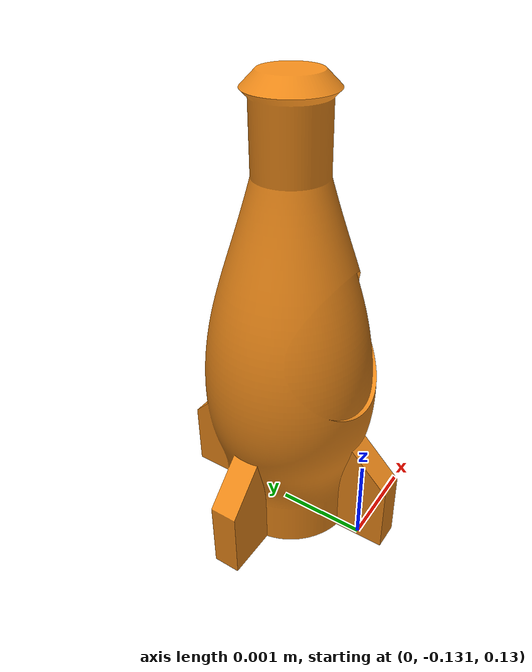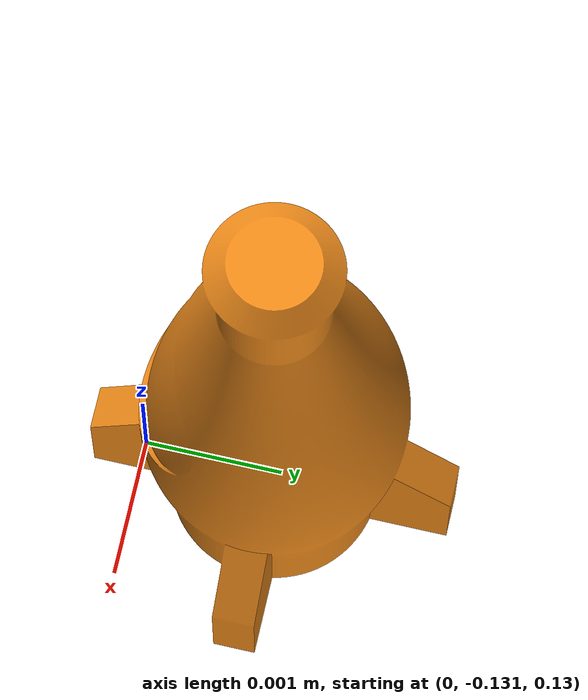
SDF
<?xml version="1.0" encoding="utf-8"?>
<sdf version="1.4">
<model name="Nuka-Cola">
    <static>0</static>
    <link name="link">
        <inertial>]
            <pose>0 0 1 0 0 0</pose>
            <mass>0.390</mass>
            <inertia>
            <ixx>0.00055575</ixx>
            <ixy>0</ixy>
            <ixz>0</ixz>
            <iyy>0.00055575</iyy>
            <iyz>0</iyz>
            <izz>0.0001755</izz>
            </inertia>
        </inertial>]
        <collision name="collision">
            <pose>0 0 0.25 0 0 0.8</pose>
            <geometry>
                <box><size>0.24 0.24 0.5</size></box>
            </geometry>
        </collision>
        <visual name="visual">
            <pose>0 -0.13 0.13 0 0 0</pose>
            <geometry>
            <mesh>
                <uri>model://nuka-cola/meshes/nuka-cola.stl</uri>
                <scale>0.01 0.01 0.01</scale>
            </mesh>
            </geometry>
            <material>
                <script>
                    <uri>file://media/materials/scripts/gazebo.material</uri>
                    <name>Gazebo/Orange</name>
            </script>
        </material>
        </visual>
    </link>
  </model>
</sdf>
